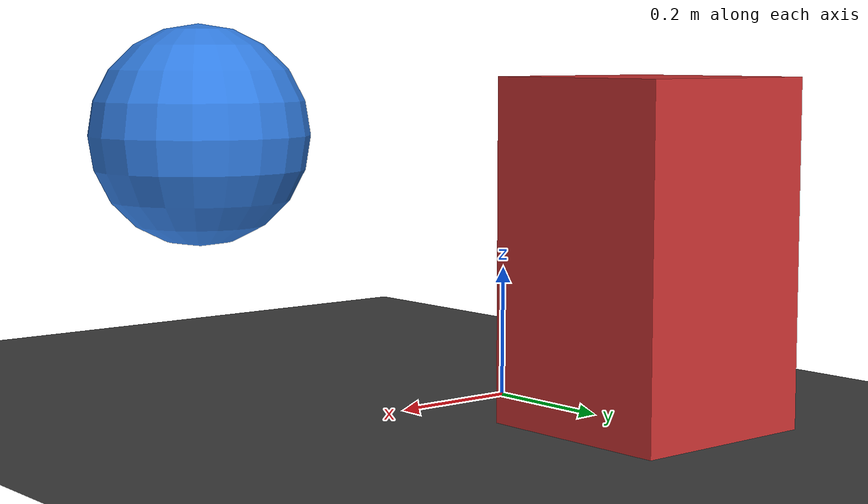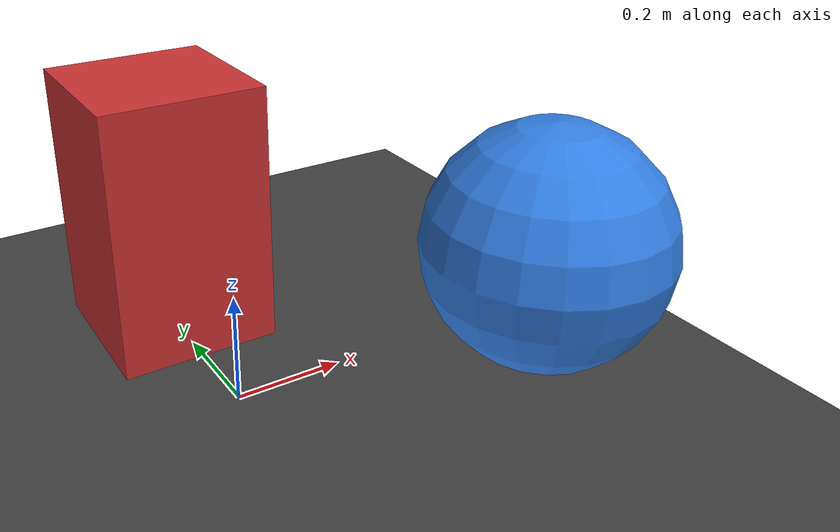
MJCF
<mujoco model="camera_scene">
  <compiler angle="radian"/>
  <option timestep="0.002" gravity="0 0 -9.81"/>

  <asset>
    <texture type="skybox" builtin="gradient" rgb1="0.8 0.9 1" rgb2="0.3 0.4 0.5" width="256" height="256"/>
    <texture name="grid" type="2d" builtin="checker" rgb1="0.2 0.2 0.2" rgb2="0.3 0.3 0.3" width="300" height="300"/>
    <material name="grid" texture="grid" texrepeat="5 5" reflectance="0.1"/>
  </asset>

  <worldbody>
    <light pos="0 -1 3" dir="0 0.3 -1" diffuse="1 1 1"/>
    <geom name="floor" type="plane" size="3 3 0.1" material="grid"/>

    <!-- Depth-test targets: known size/pose/color, nothing else in the scene. -->
    <body name="test_box" pos="0 0.3 0.25">
      <geom name="test_box_geom" type="box" size="0.15 0.15 0.25" rgba="0.8 0.2 0.2 1"/>
    </body>
    <body name="test_sphere" pos="0.3 -0.4 0.4">
      <geom name="test_sphere_geom" type="sphere" size="0.18" rgba="0.2 0.5 0.9 1"/>
    </body>

    <!-- Camera mount: a free-standing body today. To reuse the camera
         elsewhere (e.g. on a robot link), include rgbd_camera.xml inside
         that body instead — see the comments in that file. -->
    <body name="camera_mount" pos="1.6 0 0.9" xyaxes="0 1 0 -0.298275 0 0.95448">
      <include file="rgbd_camera.xml"/>
    </body>
  </worldbody>
</mujoco>

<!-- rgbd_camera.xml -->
<mujocoinclude>
  <camera name="rgbd" fovy="58" resolution="640 480"/>
</mujocoinclude>
